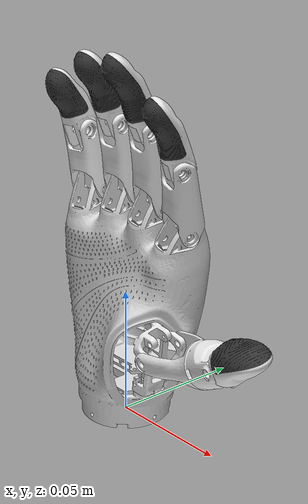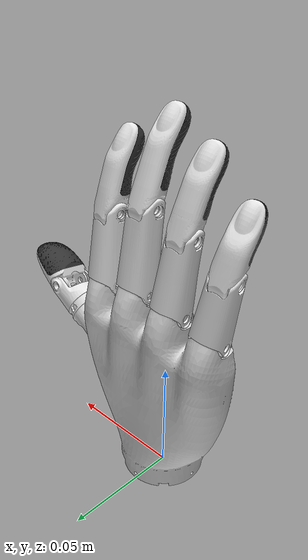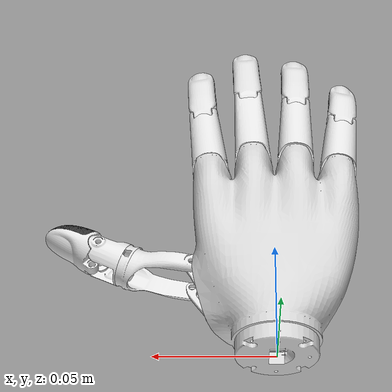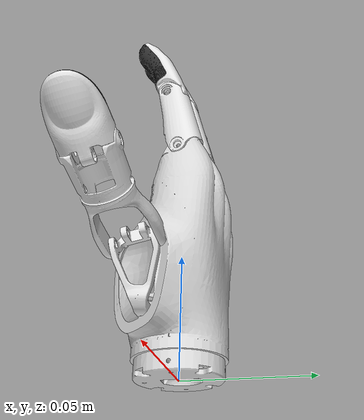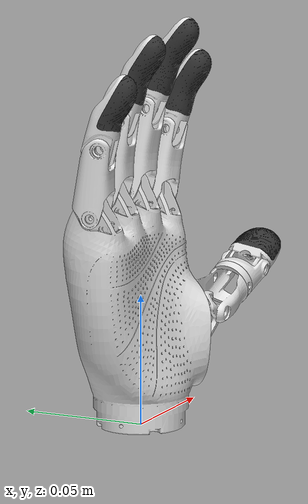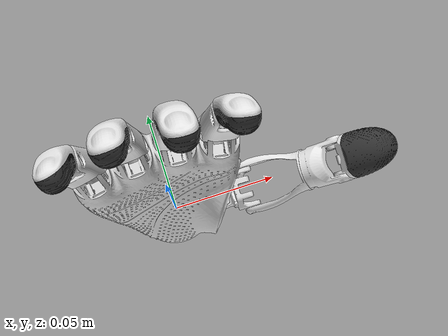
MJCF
<?xml version="1.0" encoding="utf-8"?>
<mujoco model="DH116S-R000-A1">

  <compiler angle="radian" meshdir="../meshes" eulerseq="XYZ" autolimits="true"/>
  <option gravity="0 0 -9.81" timestep="0.002" iterations="100"/>

  <default>
    <!-- 统一关节阻尼与虚拟惯量，配合位置执行器形成过阻尼响应，减小摇晃 -->
    <joint type="hinge" damping="2.0" armature="0.01" frictionloss="0"/>
    <!-- 默认关闭接触参与；需要接触的被动指节/胶垫在各自 geom 上单独覆盖 -->
    <geom condim="4" friction="1.0 0.005 0.001" contype="0" conaffinity="0"/>
    <!-- equality: 减小 solref[0] 时间常数 → 约束更硬，残差更小 -->
    <equality solref="0.004 1" solimp="0.9 0.99 0.001 0.5 2"/>
  </default>

  <!-- ==================== 网格资源 ==================== -->
  <asset>
    <mesh name="base_link" file="base_link.STL"/>
    <mesh name="finger11_link" file="finger11_link.STL"/>
    <mesh name="finger12_link" file="finger12_link.STL"/>
    <mesh name="finger13_link" file="finger13_link.STL"/>
    <mesh name="finger14_link" file="finger14_link.STL"/>
    <mesh name="finger21_link" file="finger21_link.STL"/>
    <mesh name="finger22_link" file="finger22_link.STL"/>
    <mesh name="finger23_link" file="finger23_link.STL"/>
    <mesh name="finger31_link" file="finger31_link.STL"/>
    <mesh name="finger32_link" file="finger32_link.STL"/>
    <mesh name="finger33_link" file="finger33_link.STL"/>
    <mesh name="finger41_link" file="finger41_link.STL"/>
    <mesh name="finger42_link" file="finger42_link.STL"/>
    <mesh name="finger43_link" file="finger43_link.STL"/>
    <mesh name="finger51_link" file="finger51_link.STL"/>
    <mesh name="finger52_link" file="finger52_link.STL"/>
    <mesh name="finger53_link" file="finger53_link.STL"/>
  </asset>

  <!-- ==================== 运动体树 ==================== -->
  <worldbody>

    <!-- 手掌基座（焊死在世界坐标系） -->
    <body name="base_link" pos="0 0 0">
      <geom name="base_link" type="mesh" mesh="base_link" rgba="0.85 0.85 0.85 1"/>
      <inertial pos="0.000384322111287069 0.00753084251208742 0.0472909739889326" mass="0.109379461925353" fullinertia="4.8658626062114E-05 6.96839906122602E-05 3.07683899448741E-05 1.90165367140657E-07 4.76749750234747E-07 -2.36133057842731E-06"/>

      <!-- ===== 手指 1：大拇指 (Thumb) ===== -->

      <!--
        finger11: 主动 — 拇指摆动 (MCP ab/adduction)
        绕 -Z 轴，范围 0~1.588 rad，独立执行器驱动
      -->
      <body name="finger11_link" pos="0.019011443942029 -0.00780399999999971 0.0343199999999998" euler="0 0 1.4189526818714">
        <joint name="finger11" axis="0 0 -1" range="0 1.588"/>
        <geom name="finger11_link" type="mesh" mesh="finger11_link" rgba="0.9 0.9 0.9 1"/>
        <inertial pos="-0.000106936701499152 -0.00887532166965714 0.00188503573341194" mass="0.00704884300354655" fullinertia="9.65962069608261E-07 9.82359201731221E-07 2.90732053006428E-07 -1.44438396657121E-08 -2.78802353633112E-08 1.16859938665557E-07"/>

        <!--
          finger12: 主动 — 拇指 MCP 屈曲 (MCP flexion)
          绕 -X 轴，范围 0~1.030 rad，独立执行器驱动
        -->
        <body name="finger12_link" pos="-0.00241716818193387 -0.0149999999957004 0.00671430739411609" euler="0.914460600969039 -0.26179938779915 0">
          <joint name="finger12" axis="-1 0 0" range="0 1.030"/>
          <geom name="finger12_link" type="mesh" mesh="finger12_link" rgba="0.9 0.9 0.9 1"/>
          <inertial pos="0.00575146979629403 -0.00980743444616855 0.019859071306553" mass="0.00572064501582461" fullinertia="1.07119834760592E-06 1.23181109053526E-06 6.0079268566964E-07 4.58213387989754E-08 -7.67707579266534E-08 3.23507378708491E-07"/>

          <body name="finger13_link" pos="0.00598654106733671 -0.0125165261747051 0.0381626484720598" euler="0.382919042912385 0.147573481949468 0.0154304498115495">
            <joint name="finger13" axis="-1 0 0" range="0 1.13"/>
            <geom name="finger13_link" type="mesh" mesh="finger13_link" rgba="0.9 0.9 0.9 1" contype="1" conaffinity="1"/>
            <inertial pos="0.00252081313880359 -0.00372563202308732 0.00904163814125886" mass="0.00512347606012059" fullinertia="2.40947986098038E-07 3.07751181192004E-07 1.61697663271219E-07 -5.09796574066595E-10 -9.60704042330482E-10 -7.35260411693152E-09"/>

            <!--
              finger14_link: 拇指橡胶垫
              无关节，完全固连到 finger13_link，随 IP 一同运动
            -->
            <body name="finger14_link" pos="0 0 0" euler="0 0 0">
              <geom name="finger14_link" type="mesh" mesh="finger14_link" rgba="0.2 0.2 0.2 1" contype="1" conaffinity="1"/>
              <inertial pos="0.00249769126018826 0.00167067101210644 0.0123801371744446" mass="0.00240482348656883" fullinertia="6.51224324821768E-08 9.9767942266961E-08 5.5208299164458E-08 -2.76696868457692E-10 -6.12678170657889E-10 3.06755746735259E-09"/>
            </body>

          </body>
        </body>
      </body>

      <!-- ===== 手指 2：食指 (Index) ===== -->

      <!--
        finger21: 主动 — 食指 MCP
        绕 +X 轴，范围 0~1.257 rad，独立执行器驱动
      -->
      <body name="finger21_link" pos="0.0262687686016299 0.00528244145664834 0.0838772330726273" euler="0.184030828348921 0.0900710961718212 0">
        <joint name="finger21" axis="1 0 0" range="0 1.257"/>
        <geom name="finger21_link" type="mesh" mesh="finger21_link" rgba="0.9 0.9 0.9 1"/>
        <inertial pos="0.00027210041910733 0.00170234735088368 0.014516323212758" mass="0.00393774528740839" fullinertia="3.16719166363702E-07 3.45533063039298E-07 1.51382459897184E-07 4.75695190346559E-09 1.33068275020846E-09 7.7985196786372E-09"/>

        <!--
          finger22: 从动 — 食指 PIP
          绕 +X 轴，由 equality 约束跟随 finger21 (MCP)
          原始公式(°): y = 0.0067x² + 0.8847x + 2.1926
          polycoef(rad): [0.038265, 0.8847, 0.383882, 0, 0]
        -->
        <body name="finger22_link" pos="0 0 0.028026675184573" euler="0 0 0">
          <joint name="finger22" axis="1 0 0" range="0 1.75"/>
          <geom name="finger22_link" type="mesh" mesh="finger22_link" rgba="0.9 0.9 0.9 1" contype="1" conaffinity="1"/>
          <inertial pos="0.000180892622891587 0.00133699393436336 0.010912976228776" mass="0.00359509305446838" fullinertia="3.71495920772452E-07 3.74339102526511E-07 6.27179802580373E-08 3.3566423592835E-10 8.81868087157963E-09 4.09550241976548E-08"/>

          <!--
            finger23_link: 食指橡胶垫
            无关节，完全固连到 finger22_link，随 PIP 一同运动
          -->
          <body name="finger23_link" pos="0 0 0" euler="0 0 0">
            <geom name="finger23_link" type="mesh" mesh="finger23_link" rgba="0.2 0.2 0.2 1" contype="1" conaffinity="1"/>
            <inertial pos="-0.000690109619396834 -0.00377783340062988 0.0191163501361598" mass="0.00194916130998001" fullinertia="9.25442673743886E-08 9.46455434630362E-08 3.02508825822761E-08 3.79093542922402E-10 3.55204790224285E-09 2.17891055188829E-08"/>
          </body>

        </body>
      </body>

      <!-- ===== 手指 3：中指 (Middle) ===== -->

      <!--
        finger31: 主动 — 中指 MCP
        绕 +X 轴，范围 0~1.257 rad，独立执行器驱动
      -->
      <body name="finger31_link" pos="0.00874401205559361 0.00650966935499851 0.0881661201014335" euler="0.175821944347936 0.05205044550937 -0.0495268334341439">
        <joint name="finger31" axis="1 0 0" range="0 1.257"/>
        <geom name="finger31_link" type="mesh" mesh="finger31_link" rgba="0.9 0.9 0.9 1"/>
        <inertial pos="-2.41743304470188E-06 0.0016881536103133 0.0166092629083552" mass="0.00465632374460654" fullinertia="4.64032038497059E-07 4.96217078056825E-07 1.78406731079551E-07 -6.14756143609671E-11 5.30642140220418E-11 1.19847357277137E-08"/>

        <!--
          finger32: 从动 — 中指 PIP
          绕 +X 轴，由 equality 约束跟随 finger31 (MCP)
          原始公式(°): y = 0.0076x² + 0.8485x + 2.0597
          polycoef(rad): [0.035946, 0.8485, 0.435448, 0, 0]
        -->
        <body name="finger32_link" pos="0 -0.000265259842373017 0.0325298807757662" euler="0 0 0">
          <joint name="finger32" axis="1 0 0" range="0 1.75"/>
          <geom name="finger32_link" type="mesh" mesh="finger32_link" rgba="0.9 0.9 0.9 1" contype="1" conaffinity="1"/>
          <inertial pos="-4.52052482557974E-07 0.000239188481448136 0.0125647103929899" mass="0.00396485659955852" fullinertia="5.13613810914939E-07 5.04420042058448E-07 8.36320010149996E-08 -3.89316581101276E-10 1.51691231313048E-09 9.32849272033081E-08"/>

          <!--
            finger33_link: 中指橡胶垫
            无关节，完全固连到 finger32_link，随 PIP 一同运动
          -->
          <body name="finger33_link" pos="0 0 0" euler="0 0 0">
            <geom name="finger33_link" type="mesh" mesh="finger33_link" rgba="0.2 0.2 0.2 1" contype="1" conaffinity="1"/>
            <inertial pos="1.11963736759702E-06 -0.00561969015110605 0.021082467343861" mass="0.00227280089263279" fullinertia="1.47858333672132E-07 1.41914584192602E-07 4.21604565911276E-08 1.18576994854538E-12 -4.80407376657536E-12 4.17788434922029E-08"/>
          </body>

        </body>
      </body>

      <!-- ===== 手指 4：无名指 (Ring) ===== -->

      <!--
        finger41: 主动 — 无名指 MCP
        绕 +X 轴，范围 0~1.257 rad，独立执行器驱动
      -->
      <body name="finger41_link" pos="-0.00884629646917347 0.007306751562741 0.0874130612220856" euler="0.185216698200614 -0.0252760066009568 0">
        <joint name="finger41" axis="1 0 0" range="0 1.257"/>
        <geom name="finger41_link" type="mesh" mesh="finger41_link" rgba="0.9 0.9 0.9 1"/>
        <inertial pos="-9.92502562325998E-05 0.00187501159969453 0.014820900729557" mass="0.0041427825906401" fullinertia="3.6220134054032E-07 3.93202304061915E-07 1.57968682958101E-07 -1.65704576345153E-09 -5.59535256816269E-10 1.16626470854897E-08"/>

        <body name="finger42_link" pos="0 0 0.0295285227667386" euler="0 0 0">
          <joint name="finger42" axis="1 0 0" range="0 1.75"/>
          <geom name="finger42_link" type="mesh" mesh="finger42_link" rgba="0.9 0.9 0.9 1" contype="1" conaffinity="1"/>
          <inertial pos="-7.89219634561439E-05 0.00097321984233115 0.0112167692179996" mass="0.00382855237153465" fullinertia="3.99488238110434E-07 4.00190012613912E-07 6.93581584914543E-08 -1.85363448432404E-10 -4.12189120722601E-10 5.18765070283196E-08"/>

          <!--
            finger43_link: 无名指橡胶垫
            无关节，完全固连到 finger42_link，随 PIP 一同运动
          -->
          <body name="finger43_link" pos="0 0 0" euler="0 0 0">
            <geom name="finger43_link" type="mesh" mesh="finger43_link" rgba="0.2 0.2 0.2 1" contype="1" conaffinity="1"/>
            <inertial pos="0.000145172504775415 -0.00439620819878777 0.019822139983784" mass="0.00194917989840034" fullinertia="9.24793211748131E-08 9.37057773401234E-08 3.12581553687104E-08 -2.25304567561179E-11 -1.15239273424032E-09 2.34518680404736E-08"/>
          </body>

        </body>
      </body>

      <!-- ===== 手指 5：小拇指 (Pinky) ===== -->

      <!--
        finger51: 主动 — 小拇指 MCP
        绕 +X 轴，范围 0~1.291 rad，独立执行器驱动
      -->
      <body name="finger51_link" pos="-0.0263133099109462 0.00562794981638235 0.0830420444966198" euler="0.153405557961376 -0.116668550344774 0.149285285649185">
        <joint name="finger51" axis="1 0 0" range="0 1.291"/>
        <geom name="finger51_link" type="mesh" mesh="finger51_link" rgba="0.9 0.9 0.9 1"/>
        <inertial pos="-2.33333913605971E-06 0.00181485062221548 0.0131392699022088" mass="0.00345037170327943" fullinertia="2.37940412354949E-07 2.69111254422569E-07 1.35191102489079E-07 -3.80727108476698E-12 8.69321923902387E-11 7.24144543213933E-09"/>

        <body name="finger52_link" pos="0 0 0.0250241718362191" euler="0 0 0">
          <joint name="finger52" axis="1 0 0" range="0 1.75"/>
          <geom name="finger52_link" type="mesh" mesh="finger52_link" rgba="0.9 0.9 0.9 1" contype="1" conaffinity="1"/>
          <inertial pos="-3.15300649285088E-05 0.00108071309102561 0.00848073574589434" mass="0.0034586827978682" fullinertia="2.5318219393825E-07 2.54247652609832E-07 6.41400708772532E-08 -5.26062638639635E-11 1.06905539796088E-09 2.38936859610866E-08"/>

          <!--
            finger53_link: 小拇指橡胶垫
            无关节，完全固连到 finger52_link，随 PIP 一同运动
          -->
          <body name="finger53_link" pos="0 0 0" euler="0 0 0">
            <geom name="finger53_link" type="mesh" mesh="finger53_link" rgba="0.2 0.2 0.2 1" contype="1" conaffinity="1"/>
            <inertial pos="-0.00010159715941721 -0.00420240434545652 0.0167623091483986" mass="0.00149578721592064" fullinertia="4.39306653069545E-08 4.56160148535183E-08 2.11073455747021E-08 5.60547792622162E-11 -2.47230752349555E-10 1.05043396073308E-08"/>
          </body>

        </body>
      </body>

    </body>
  </worldbody>

  <equality>
    <!-- 大拇指 IP (finger13, 从动) 跟随 MCP flexion (finger12, 主动) -->
    <joint name="eq_thumb" joint1="finger13" joint2="finger12" polycoef="-0.015082 0.929 -0.045837 0 0"/>

    <!-- 食指 PIP (finger22, 从动) 跟随 MCP (finger21, 主动) -->
    <joint name="eq_index" joint1="finger22" joint2="finger21" polycoef="0.038265 0.8847 0.383882 0 0"/>

    <!-- 中指 PIP (finger32, 从动) 跟随 MCP (finger31, 主动) -->
    <joint name="eq_middle" joint1="finger32" joint2="finger31" polycoef="0.035946 0.8485 0.435448 0 0"/>

    <!-- 无名指 PIP (finger42, 从动) 跟随 MCP (finger41, 主动) -->
    <joint name="eq_ring" joint1="finger42" joint2="finger41" polycoef="0.043170 0.8321 0.452637 0 0"/>

    <!-- 小拇指 PIP (finger52, 从动) 跟随 MCP (finger51, 主动) -->
    <joint name="eq_pinky" joint1="finger52" joint2="finger51" polycoef="0.035218 0.7349 0.429718 0 0"/>
  </equality>

  <actuator>
    <!-- 大拇指: 2 个主动 DOF -->
    <position name="act_finger11" joint="finger11" kp="50" kv="2.0" ctrlrange="0 1.588"/>
    <position name="act_finger12" joint="finger12" kp="50" kv="2.0" ctrlrange="0 1.030"/>

    <!-- 食指: 1 个主动 DOF (PIP 由 equality 驱动) -->
    <position name="act_finger21" joint="finger21" kp="50" kv="2.0" ctrlrange="0 1.257"/>

    <!-- 中指: 1 个主动 DOF -->
    <position name="act_finger31" joint="finger31" kp="50" kv="2.0" ctrlrange="0 1.257"/>

    <!-- 无名指: 1 个主动 DOF -->
    <position name="act_finger41" joint="finger41" kp="50" kv="2.0" ctrlrange="0 1.257"/>

    <!-- 小拇指: 1 个主动 DOF -->
    <position name="act_finger51" joint="finger51" kp="50" kv="2.0" ctrlrange="0 1.291"/>
  </actuator>

</mujoco>
